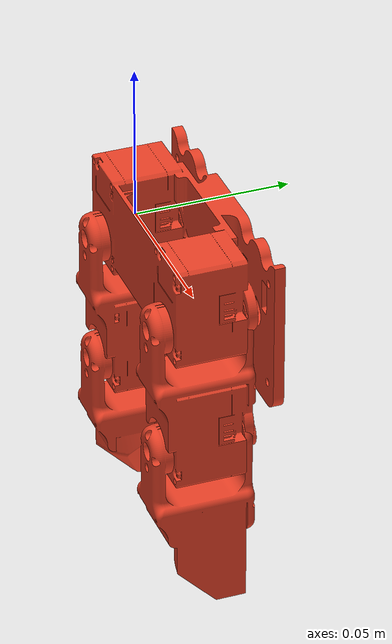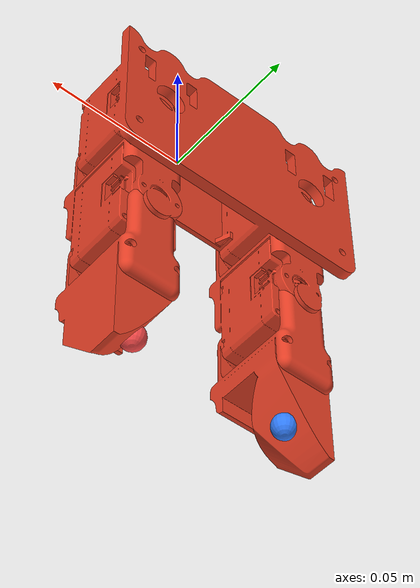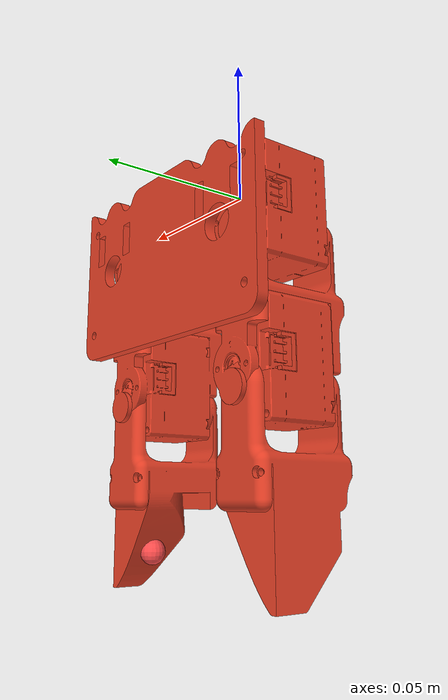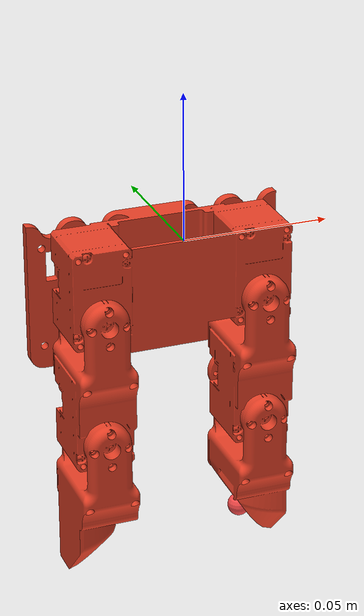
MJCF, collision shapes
<mujoco model="two_finger_hand">
  <compiler angle="radian" meshdir="meshes" autolimits="true"/>
  <asset>
    <mesh name="base_link" file="base_link.stl" maxhullvert="64"/>
    <mesh name="adapter" file="adapter.stl"/>
    <mesh name="shim" file="shim.stl"/>
    <mesh name="mount24" file="mount24.stl"/>
    <mesh name="left_1" file="left_1.stl" maxhullvert="48"/>
    <mesh name="left_2" file="left_2.stl" maxhullvert="48"/>
    <mesh name="right_1" file="right_1.stl" maxhullvert="48"/>
    <mesh name="right_2" file="right_2.stl" maxhullvert="48"/>
  </asset>
  <default>
    <default class="visual">
      <geom type="mesh" contype="0" conaffinity="0" group="1" density="0"/>
    </default>
    <default class="collision">
      <geom type="mesh" group="3" rgba="0.9 0.25 0.15 0.6"/>
    </default>
  </default>
  <worldbody>
    <body name="base_link">
      <geom mesh="base_link" rgba="0.80 0.82 0.85 1" class="visual"/>
      <geom mesh="adapter" rgba="0.60 0.75 0.60 1" class="visual" pos="0.0 0.0113 0.0315" quat="0 1 0 0"/>
      <geom mesh="shim" rgba="0.72 0.55 0.86 1" class="visual" pos="0.0 0.0113 0.0075" quat="0 0 1 0"/>
      <geom mesh="mount24" rgba="0.90 0.59 0.24 1" class="visual" pos="-0.035 0.0108 0.0005" quat="1 0 0 0"/>
      <geom name="palm_col" mesh="base_link" class="collision"/>
      <body name="left_1" pos="-0.028 -0.0037 -0.024">
        <joint name="left_1" type="hinge" axis="0 1 0" range="-1.6 1.6" armature="0.01" damping="0.2" solreflimit="0.02 1"/>
        <geom mesh="left_1" rgba="0.42 0.62 0.90 1" class="visual"/>
        <geom name="left_1_col" mesh="left_1" class="collision"/>
        <body name="left_2" pos="0 0 -0.0445">
          <joint name="left_2" type="hinge" axis="0 1 0" range="-1.6 1.6" armature="0.01" damping="0.2" solreflimit="0.02 1"/>
          <geom mesh="left_2" rgba="0.10 0.30 0.70 1" class="visual"/>
          <geom name="left_2_col" mesh="left_2" class="collision"/>
          <site name="left_pad" pos="0.00133 0.01885 -0.04400" size="0.004"
                rgba="0.2 0.5 1.0 0.9"/>
        </body>
      </body>
      <body name="right_1" pos="0.028 -0.0037 -0.024">
        <joint name="right_1" type="hinge" axis="0 1 0" range="-1.6 1.6" armature="0.01" damping="0.2" solreflimit="0.02 1"/>
        <geom mesh="right_1" rgba="0.92 0.48 0.48 1" class="visual"/>
        <geom name="right_1_col" mesh="right_1" class="collision"/>
        <body name="right_2" pos="0 0 -0.0445">
          <joint name="right_2" type="hinge" axis="0 1 0" range="-1.6 1.6" armature="0.01" damping="0.2" solreflimit="0.02 1"/>
          <geom mesh="right_2" rgba="0.62 0.0 0.0 1" class="visual"/>
          <geom name="right_2_col" mesh="right_2" class="collision"/>
          <!-- Mirror of left_pad; see the note there. -->
          <site name="right_pad" pos="-0.00133 0.01885 -0.04400" size="0.004"
                rgba="1.0 0.3 0.3 0.9"/>
        </body>
      </body>
    </body>
  </worldbody>
  <actuator>
    <position name="left_1" joint="left_1" kp="1"/>
    <position name="left_2" joint="left_2" kp="1"/>
    <position name="right_1" joint="right_1" kp="1"/>
    <position name="right_2" joint="right_2" kp="1"/>
  </actuator>
</mujoco>
